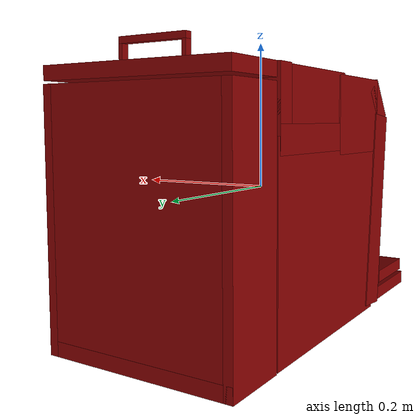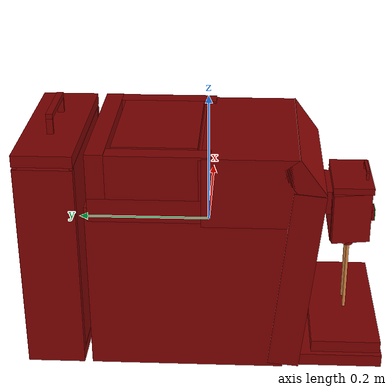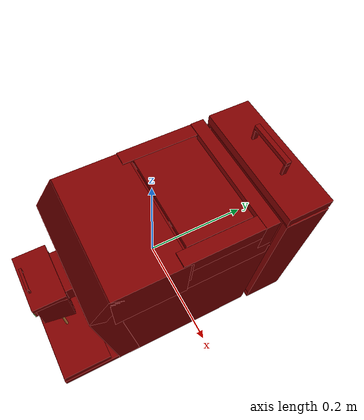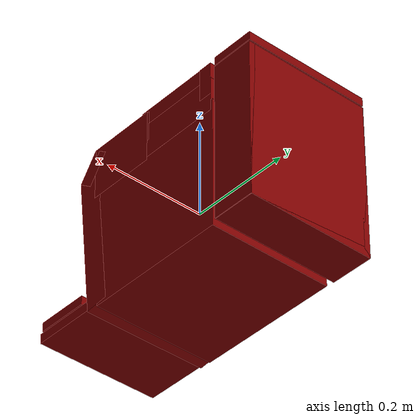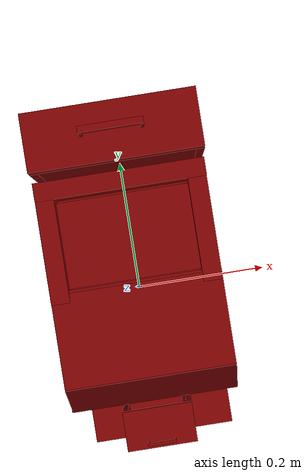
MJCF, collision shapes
<?xml version='1.0' encoding='UTF-8'?>
<mujoco model="model">
  <compiler angle="radian"/>
  <asset>
    <mesh file="visuals/Body001.obj" name="Body001_vis"/>
    <mesh file="visuals/Button001.obj" name="Button001_vis"/>
    <mesh file="visuals/Button002.obj" name="Button002_vis"/>
    <mesh file="visuals/Container001_Clear.obj" name="Container001_Clear_vis"/>
    <mesh file="visuals/Lid001.obj" name="Lid001_vis"/>
    <mesh file="visuals/Lid002.obj" name="Lid002_vis"/>
    <mesh file="visuals/Lid003.obj" name="Lid003_vis"/>
    <mesh file="visuals/Lid004.obj" name="Lid004_vis"/>
    <texture file="visuals/T_BC001.png" name="Body001_material" type="2d"/>
    <material name="Body001_material" rgba="1 1 1 1.0" texture="Body001_material" shininess="1" specular="1"/>
    <texture file="visuals/T_BC001.png" name="Button001_material" type="2d"/>
    <material name="Button001_material" rgba="1 1 1 1.0" texture="Button001_material" shininess="1" specular="1"/>
    <texture file="visuals/T_BC001.png" name="Button002_material" type="2d"/>
    <material name="Button002_material" rgba="1 1 1 1.0" texture="Button002_material" shininess="1" specular="1"/>
    <texture file="visuals/T_BC001.png" name="Container001_Clear_material" type="2d"/>
    <material name="Container001_Clear_material" rgba="1 1 1 0.23499995470046997" texture="Container001_Clear_material" shininess="0.4472135901451111" specular="0.3103448502657381"/>
    <texture file="visuals/T_BC001.png" name="Lid004_material" type="2d"/>
    <material name="Lid004_material" rgba="1 1 1 1.0" texture="Lid004_material" shininess="1" specular="1"/>
    <texture file="visuals/T_BC001.png" name="Lid001_material" type="2d"/>
    <material name="Lid001_material" rgba="1 1 1 1.0" texture="Lid001_material" shininess="1" specular="1"/>
    <texture file="visuals/T_BC001.png" name="Lid002_material" type="2d"/>
    <material name="Lid002_material" rgba="1 1 1 1.0" texture="Lid002_material" shininess="1" specular="1"/>
    <texture file="visuals/T_BC001.png" name="Lid003_material" type="2d"/>
    <material name="Lid003_material" rgba="1 1 1 1.0" texture="Lid003_material" shininess="1" specular="1"/>
  </asset>
  <default>
    <default class="visual">
      <geom conaffinity="0" contype="0" group="1" type="mesh"/>
    </default>
    <default class="collision">
      <geom group="0" rgba="0.5 0 0 0.5"/>
    </default>
    <default class="spawn">
      <geom group="0" rgba="1 1 1 0.5" contype="0" conaffinity="0"/>
      <site group="0" rgba="1 1 1 0.5"/>
    </default>
    <default class="region">
      <geom group="1" conaffinity="0" contype="0" rgba="0 1 0 0"/>
    </default>
  </default>
  <worldbody>
    <body>
      <body name="object">
        <geom class="collision" type="box" pos="-0.033061 -0.247833 0.032842" size="0.010365952737629414 0.00039687592652626336 0.008961374871432781" quat="1.0 0.0 0.0 0.0" name="start_button_1" rgba="0.0 0.5 0 0.5"/>
        <geom class="collision" type="box" pos="0.030114 -0.247837 0.032924" size="0.010388100519776344 0.0003994692815467715 0.008916223421692848" quat="1.0 0.0 0.0 0.0" name="start_button_2" rgba="0.0 0.5 0 0.5"/>
        <site type="cylinder" rgba="0.8 0.5 0.25 1" size="0.0025506746023893356 0.08439545333385468" pos="-0.017508 -0.213857 -0.096630" name="coffee_liquid_left"/>
        <site type="cylinder" rgba="0.8 0.5 0.25 1" size="0.0025484999641776085 0.08385958522558212" pos="0.014566 -0.213967 -0.096792" name="coffee_liquid_right"/>
        <site rgba="0 0 0 0" size="0.009999999776482582 0.009999999776482582" pos="-0.0013830000000000005 -0.214305 -0.147794" name="receptacle_place_site"/>
        <geom mesh="Body001_vis" type="mesh" solimp="0.998 0.998 0.001" solref="0.001 1" density="100" friction="0.95 0.3 0.1" class="visual" material="Body001_material"/>
        <geom class="collision" type="box" pos="-0.001083 -0.131855 -0.039997" size="0.12418649345636368 0.023384904488921165 0.14223738014698029" quat="0.9986448884010315 0.05204177275300026 1.8828346314297345e-17 -4.988195327751627e-19"/>
        <geom class="collision" type="cylinder" pos="-0.016459 -0.213392 -0.018747" size="0.008289889432489872 0.009650186635553837" quat="1.0 0.0 0.0 0.0"/>
        <geom class="collision" type="cylinder" pos="0.015162 -0.213392 -0.018747" size="0.008289889432489872 0.009650186635553837" quat="1.0 0.0 0.0 0.0"/>
        <geom class="collision" type="box" pos="-0.000282 -0.201163 -0.172305" size="0.12336799502372742 0.06358985602855682 0.009515829384326935" quat="1.0 0.0 0.0 0.0"/>
        <geom class="collision" type="box" pos="-0.000282 0.027817 -0.054879" size="0.1233702301979065 0.14413173496723175 0.13094238936901093" quat="1.0 0.0 0.0 0.0"/>
        <geom class="collision" type="box" pos="-0.000282 -0.062258 0.100942" size="0.12343863397836685 0.06841201335191727 0.052273787558078766" quat="1.0 0.0 0.0 0.0"/>
        <geom class="collision" type="box" pos="-0.000282 0.078393 0.089847" size="0.12343679368495941 0.08908391743898392 0.03534024953842163" quat="1.0 0.0 0.0 0.0"/>
        <geom class="collision" type="box" pos="-0.000282 -0.137202 0.118100" size="0.12343863397836685 0.016342399641871452 0.03268228843808174" quat="0.3122599422931671 0.9499967098236084 1.1613617346411883e-23 -6.933561566806467e-17"/>
        <geom class="collision" type="box" pos="-0.001164 -0.236795 0.029042" size="0.04432997852563858 0.0020263853948563337 0.039324481040239334" quat="1.0 0.0 0.0 0.0"/>
        <geom class="collision" type="box" pos="-0.001216 -0.171340 0.050575" size="0.040293291211128235 0.01328221708536148 0.01780789904296398" quat="1.0 0.0 0.0 0.0"/>
        <geom class="collision" type="box" pos="-0.000282 0.154162 0.123260" size="0.12343762069940567 0.013314936310052872 0.033546287566423416" quat="1.0 0.0 0.0 0.0"/>
        <geom class="collision" type="box" pos="-0.000822 0.037544 0.119309" size="0.03857843577861786 0.03424255922436714 0.02959546633064747" quat="1.0 0.0 0.0 0.0"/>
        <geom class="collision" type="box" pos="-0.110190 0.079972 0.122579" size="0.013529595918953419 0.08750413358211517 0.03286510333418846" quat="1.0 0.0 0.0 0.0"/>
        <geom class="collision" type="box" pos="0.109175 0.079972 0.123036" size="0.013529603369534016 0.08750413358211517 0.033322542905807495" quat="1.0 0.0 0.0 0.0"/>
        <geom class="collision" type="box" pos="-0.000282 -0.005924 0.120597" size="0.12343785166740417 0.015962105244398117 0.030882928520441055" quat="1.0 0.0 0.0 0.0"/>
        <geom class="collision" type="box" pos="-0.046025 -0.213672 0.028595" size="0.004310887772589922 0.028898626565933228 0.03887750953435898" quat="0.9970703721046448 0.0 0.0 0.07648997008800507"/>
        <geom class="collision" type="box" pos="0.044476 -0.212605 0.028595" size="0.004310887306928635 0.028898626565933228 0.03887750953435898" quat="0.9970703721046448 0.0 -0.0 -0.07648998498916626"/>
        <geom class="collision" type="box" pos="-0.001164 -0.211009 0.022102" size="0.04432974383234978 0.026971854269504547 0.03238440677523613" quat="1.0 0.0 0.0 0.0"/>
        <geom class="collision" type="box" pos="-0.001164 -0.185323 0.029038" size="0.04432972893118858 0.0020263853948563337 0.03932054713368416" quat="1.0 0.0 0.0 0.0"/>
        <body name="Button001">
          <joint axis="0.0 1.0 0.0" pos="-0.033010 -0.245078 0.032768" limited="true" name="Button001_joint" range="0.0 0.003" type="slide" damping="1" frictionloss="1" armature=".01" stiffness="0.05"/>
          <geom mesh="Button001_vis" type="mesh" solimp="0.998 0.998 0.001" solref="0.001 1" density="100" friction="0.95 0.3 0.1" class="visual" material="Button001_material"/>
          <geom class="collision" type="box" pos="-0.033061 -0.245263 0.032842" size="0.010365952737629414 0.001881095813587308 0.008961409330368042" quat="1.0 0.0 0.0 0.0"/>
        </body>
        <body name="Button002">
          <joint axis="0.0 1.0 0.0" pos="0.030126 -0.245078 0.032704" limited="true" name="Button002_joint" range="0.0 0.003" type="slide" damping="1" frictionloss="1" armature=".01" stiffness="0.05"/>
          <geom mesh="Button002_vis" type="mesh" solimp="0.998 0.998 0.001" solref="0.001 1" density="100" friction="0.95 0.3 0.1" class="visual" material="Button002_material"/>
          <geom class="collision" type="box" pos="0.030114 -0.245259 0.032924" size="0.010388100519776344 0.001885919482447207 0.008916257880628109" quat="1.0 0.0 0.0 0.0"/>
        </body>
        <body name="Container001_Clear">
          <joint axis="0.0 0.0 1.0" pos="-0.000283 0.225189 -0.018809" limited="true" name="Container001_Clear_joint" range="0.0 0.08" type="slide" damping="1" frictionloss="1" armature=".01" stiffness="0.05"/>
          <geom mesh="Container001_Clear_vis" type="mesh" solimp="0.998 0.998 0.001" solref="0.001 1" density="100" friction="0.95 0.3 0.1" class="visual" material="Container001_Clear_material"/>
          <geom class="collision" type="box" pos="-0.122419 0.225908 -0.024212" size="0.006022981368005276 0.04276315122842789 0.15839701890945435" quat="1.0 0.0 0.0 0.0"/>
          <geom class="collision" type="box" pos="0.122419 0.225908 -0.024212" size="0.006022981368005276 0.04276315122842789 0.15839701890945435" quat="1.0 0.0 0.0 0.0"/>
          <geom class="collision" type="box" pos="0.000298 0.265175 -0.024212" size="0.1277509480714798 0.0034960575867444277 0.15839701890945435" quat="1.0 0.0 0.0 0.0"/>
          <geom class="collision" type="box" pos="0.000298 0.187427 -0.024212" size="0.1277509480714798 0.0034960575867444277 0.15839701890945435" quat="1.0 0.0 0.0 0.0"/>
          <geom class="collision" type="box" pos="-0.000377 0.225908 -0.173349" size="0.12759384512901306 0.04276315122842789 0.009260643273591995" quat="1.0 0.0 0.0 0.0"/>
          <body name="Lid004">
            <joint axis="0.0 0.0 1.0" pos="-0.000282 0.225189 0.154911" limited="true" name="Lid004_joint" range="0.0 0.08" type="slide" damping="1" frictionloss="1" armature=".01" stiffness="0.05"/>
            <geom mesh="Lid004_vis" type="mesh" solimp="0.998 0.998 0.001" solref="0.001 1" density="100" friction="0.95 0.3 0.1" class="visual" material="Lid004_material"/>
            <geom class="collision" type="box" pos="-0.000283 0.225834 0.146482" size="0.12762826681137085 0.042917173355817795 0.008660576306283474" quat="1.0 0.0 0.0 0.0"/>
            <geom class="collision" type="box" pos="0.043874 0.227405 0.165741" size="0.0024624888319522142 0.0048407018184661865 0.012383795343339443" quat="1.0 0.0 0.0 0.0"/>
            <geom class="collision" type="box" pos="-0.044513 0.227405 0.165741" size="0.0024624888319522142 0.0048407018184661865 0.012383794412016869" quat="1.0 0.0 0.0 0.0"/>
            <geom class="collision" type="box" pos="-0.000283 0.227405 0.181955" size="0.046692654490470886 0.0048407018184661865 0.003866489278152585" quat="1.0 0.0 0.0 0.0"/>
          </body>
        </body>
        <body name="Lid001">
          <joint axis="1.0 0.0 0.0" pos="-0.000279 0.008212 0.153194" limited="true" name="Lid001_joint" range="0.0 1.5707963267948966" type="hinge" damping="1" frictionloss="1" armature=".01" stiffness="0.05"/>
          <geom mesh="Lid001_vis" type="mesh" solimp="0.998 0.998 0.001" solref="0.001 1" density="100" friction="0.95 0.3 0.1" class="visual" material="Lid001_material"/>
          <geom class="collision" type="box" pos="0.000157 0.073029 0.153454" size="0.0946911945939064 0.06126794219017029 0.003488620975986123" quat="1.0 0.0 0.0 0.0"/>
        </body>
        <body name="Lid002">
          <joint axis="0.0 0.0 1.0" pos="-0.000034 -0.206223 -0.151750" limited="true" name="Lid002_joint" range="0.0 0.05" type="slide" damping="1" frictionloss="1" armature=".01" stiffness="0.05"/>
          <geom mesh="Lid002_vis" type="mesh" solimp="0.998 0.998 0.001" solref="0.001 1" density="100" friction="0.95 0.3 0.1" class="visual" material="Lid002_material"/>
          <geom class="collision" type="box" pos="0.000350 -0.210084 -0.149518" size="0.12173115462064743 0.05168413370847702 0.009040155448019505" quat="1.0 0.0 0.0 0.0"/>
        </body>
        <body name="Lid003">
          <joint axis="-1.0 0.0 0.0" pos="-0.000736 -0.185112 0.069427" limited="true" name="Lid003_joint" range="0.0 1.5707963267948966" type="hinge" damping="1" frictionloss="1" armature=".01" stiffness="0.05"/>
          <geom mesh="Lid003_vis" type="mesh" solimp="0.998 0.998 0.001" solref="0.001 1" density="100" friction="0.95 0.3 0.1" class="visual" material="Lid003_material"/>
          <geom class="collision" type="box" pos="-0.000599 -0.214171 0.075501" size="0.05325286462903023 0.030133746564388275 0.004937498364597559" quat="1.0 0.0 0.0 0.0"/>
          <geom class="collision" type="box" pos="0.019815 -0.236034 0.085604" size="0.001121948123909533 0.002205498982220888 0.0056422497145831585" quat="1.0 0.0 0.0 0.0"/>
          <geom class="collision" type="box" pos="-0.020455 -0.236034 0.085604" size="0.001121948123909533 0.002205498982220888 0.005642249248921871" quat="1.0 0.0 0.0 0.0"/>
          <geom class="collision" type="box" pos="-0.000303 -0.236034 0.092992" size="0.02127389796078205 0.002205498982220888 0.0017616326222196221" quat="1.0 0.0 0.0 0.0"/>
        </body>
        <geom class="region" name="reg_main" type="box" pos="-0.00028300000000000547 -0.0008100000000000052 -0.012632500000000005" size="0.127111 0.267941 0.1698495"/>
      </body>
    </body>
  </worldbody>
  <actuator>
    <motor name="Button001_joint_actuator" joint="Button001_joint" gear="0.5"/>
    <motor name="Button002_joint_actuator" joint="Button002_joint" gear="0.5"/>
    <motor name="Container001_Clear_joint_actuator" joint="Container001_Clear_joint" gear="10"/>
    <motor name="Lid001_joint_actuator" joint="Lid001_joint" gear="10"/>
    <motor name="Lid002_joint_actuator" joint="Lid002_joint" gear="10"/>
    <motor name="Lid003_joint_actuator" joint="Lid003_joint" gear="10"/>
    <motor name="Lid004_joint_actuator" joint="Lid004_joint" gear="10"/>
  </actuator>
</mujoco>
